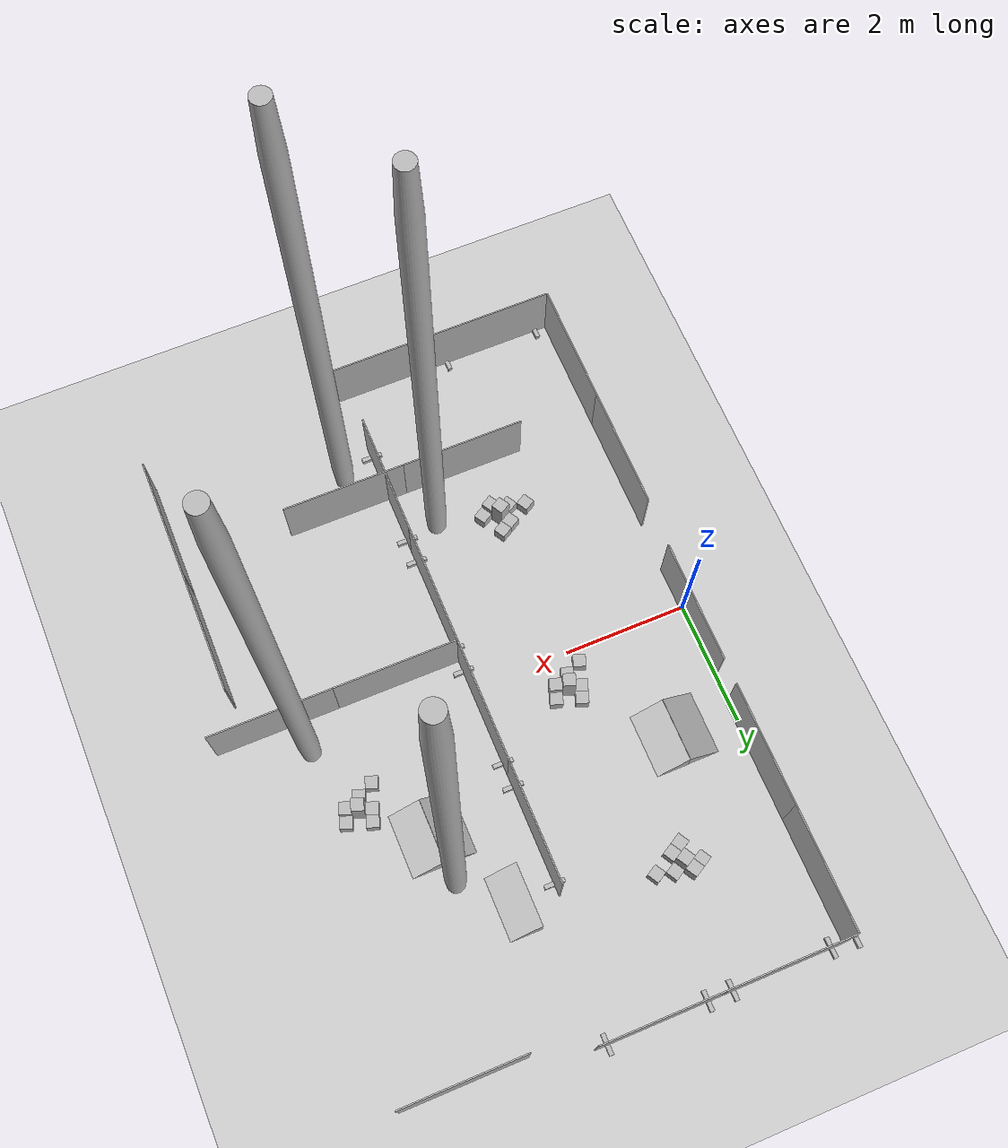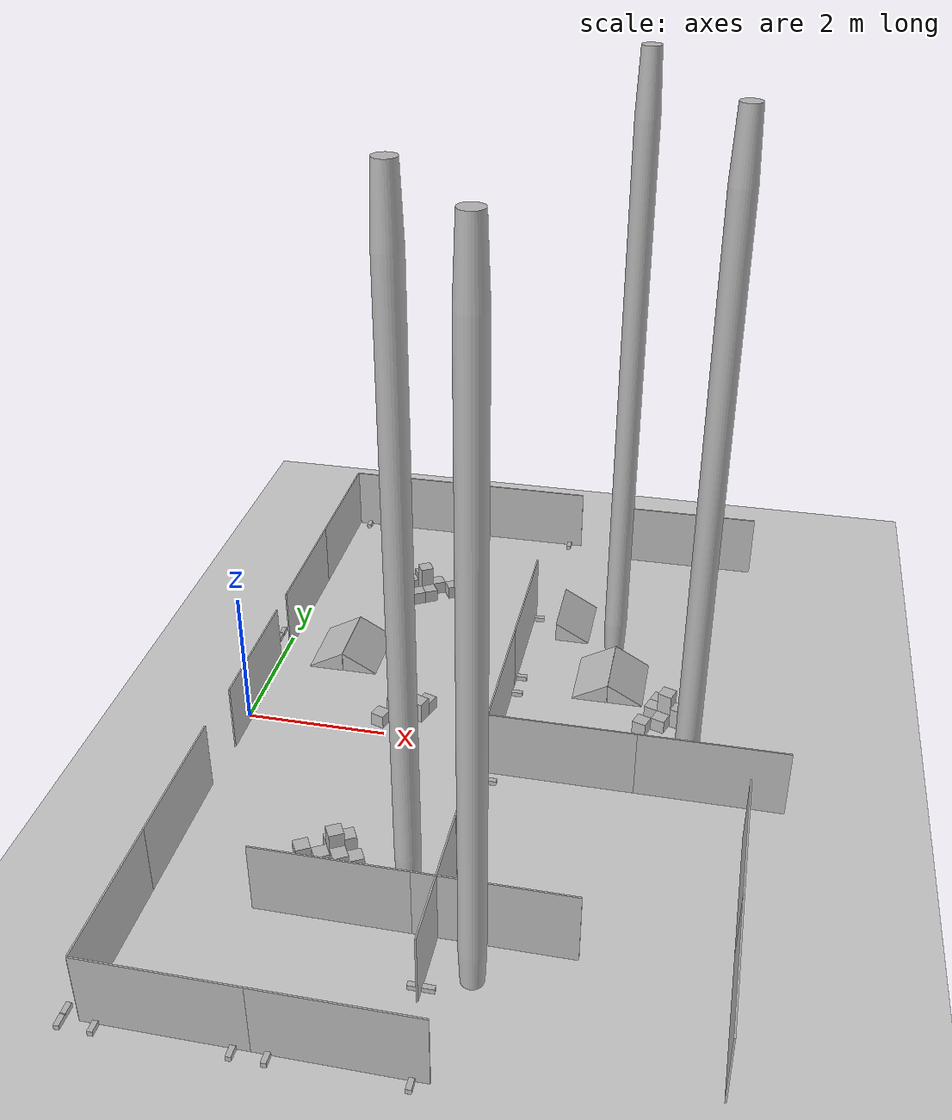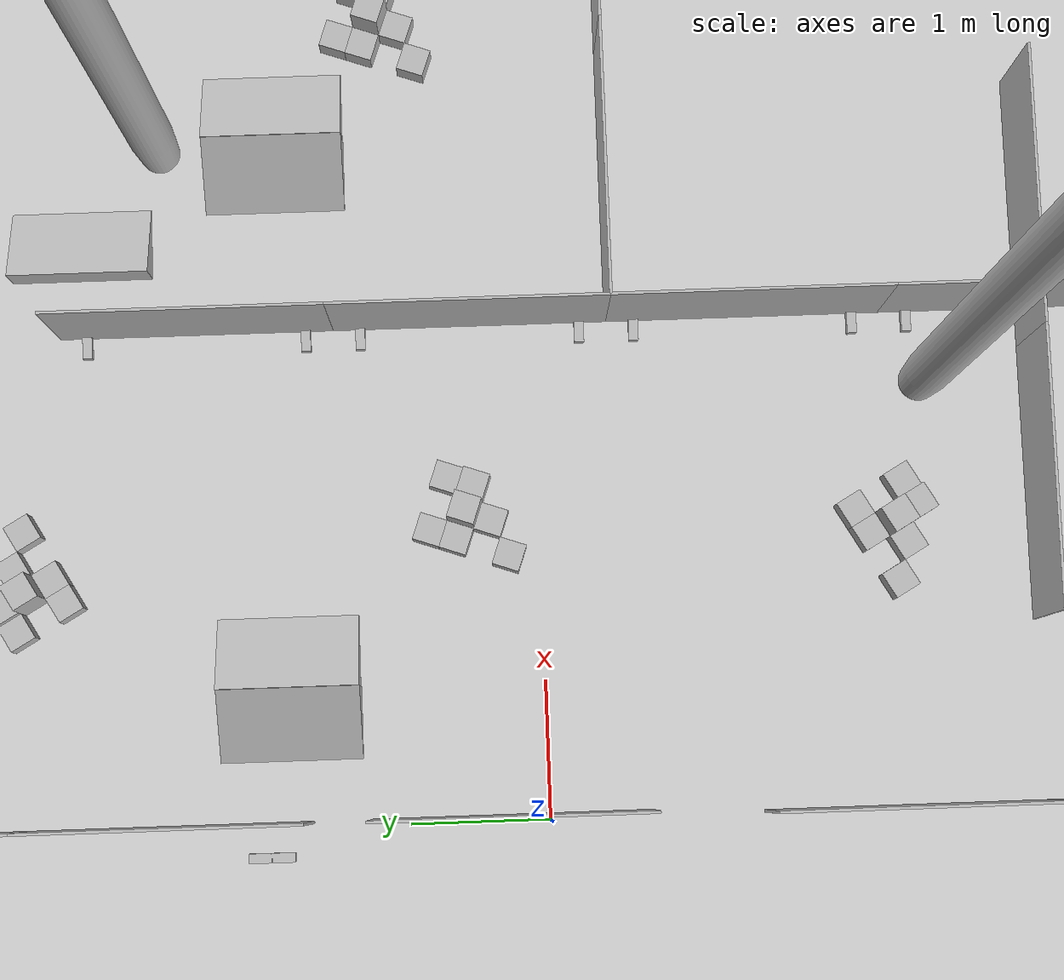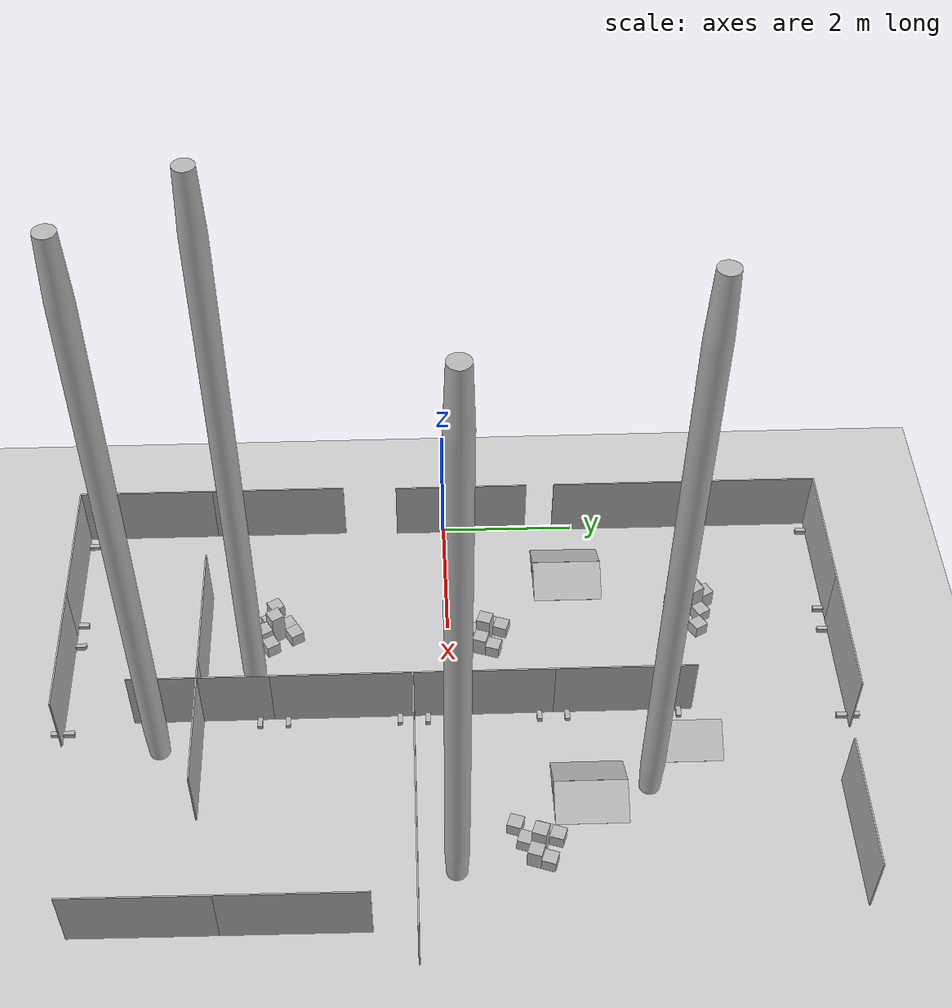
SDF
<sdf version="1.4">
 <world name="arena_HKT_5">
  <include><uri>model://ground_plane</uri></include>
  <include>
   <name>ramp.025</name>
   <pose>1.2565653324127197 1.8507144451141357 0.15000000596046448  0.0 0.0 0.0</pose>
   <uri>model://ramp</uri>
  </include>
  <include>
   <name>ramp.029</name>
   <pose>0.7436184883117676 1.8457143306732178 0.15000000596046448  0.0 -0.0 3.141592502593994</pose>
   <uri>model://ramp</uri>
  </include>
  <include>
   <name>wall_2x1.051</name>
   <pose>3.6216487884521484 2.4691503047943115 0.5130000114440918  0.0 -0.0 1.5700664520263672</pose>
   <uri>model://wall_2x1</uri>
  </include>
  <include>
   <name>wall_2x1.052</name>
   <pose>6.619458198547363 -0.5330387353897095 0.5130000114440918  0.0 -0.0 -0.0007300376892089844</pose>
   <uri>model://wall_2x1</uri>
  </include>
  <include>
   <name>wall_2x1.053</name>
   <pose>3.6201891899108887 0.4691507816314697 0.5130000114440918  0.0 -0.0 1.5700664520263672</pose>
   <uri>model://wall_2x1</uri>
  </include>
  <include>
   <name>wall_2x1.054</name>
   <pose>3.617269515991211 -3.5308477878570557 0.5130000114440918  0.0 -0.0 1.5700664520263672</pose>
   <uri>model://wall_2x1</uri>
  </include>
  <include>
   <name>wall_2x1.055</name>
   <pose>3.6187291145324707 -1.530848503112793 0.5130000114440918  0.0 -0.0 1.5700664520263672</pose>
   <uri>model://wall_2x1</uri>
  </include>
  <include>
   <name>wall_2x1.056</name>
   <pose>4.61945915222168 -0.5315788388252258 0.5130000114440918  0.0 -0.0 -0.0007300376892089844</pose>
   <uri>model://wall_2x1</uri>
  </include>
  <include>
   <name>wall_stand.674</name>
   <pose>3.6222333908081055 3.2696499824523926 0.03450000286102295  0.0 -0.0 -0.0007300376892089844</pose>
   <uri>model://wall_stand</uri>
  </include>
  <include>
   <name>wall_stand.675</name>
   <pose>3.6210646629333496 1.6686508655548096 0.03450000286102295  0.0 -0.0 -0.0007300376892089844</pose>
   <uri>model://wall_stand</uri>
  </include>
  <include>
   <name>wall_stand.676</name>
   <pose>3.6207733154296875 1.269650936126709 0.03450000286102295  0.0 -0.0 -0.0007300376892089844</pose>
   <uri>model://wall_stand</uri>
  </include>
  <include>
   <name>wall_stand.677</name>
   <pose>3.61960506439209 -0.3313487768173218 0.03450000286102295  0.0 -0.0 -0.0007300376892089844</pose>
   <uri>model://wall_stand</uri>
  </include>
  <include>
   <name>wall_stand.678</name>
   <pose>3.616685390472412 -4.331347465515137 0.03450000286102295  0.0 -0.0 -0.0007300376892089844</pose>
   <uri>model://wall_stand</uri>
  </include>
  <include>
   <name>wall_stand.679</name>
   <pose>3.6178536415100098 -2.730348825454712 0.03450000286102295  0.0 -0.0 -0.0007300376892089844</pose>
   <uri>model://wall_stand</uri>
  </include>
  <include>
   <name>wall_stand.680</name>
   <pose>3.6193137168884277 -0.7303485870361328 0.03450000286102295  0.0 -0.0 -0.0007300376892089844</pose>
   <uri>model://wall_stand</uri>
  </include>
  <include>
   <name>wall_stand.681</name>
   <pose>3.618144989013672 -2.331348419189453 0.03450000286102295  0.0 -0.0 -0.0007300376892089844</pose>
   <uri>model://wall_stand</uri>
  </include>
  <include>
   <name>wall_2x1.058</name>
   <pose>0.010646045207977295 -2.5302858352661133 0.5130000114440918  0.0 -0.0 1.570796251296997</pose>
   <uri>model://wall_2x1</uri>
  </include>
  <include>
   <name>wall_2x1.060</name>
   <pose>3.010645627975464 -5.530285835266113 0.5130000114440918  0.0 -0.0 3.141592502593994</pose>
   <uri>model://wall_2x1</uri>
  </include>
  <include>
   <name>wall_2x1.300</name>
   <pose>1.010645866394043 -5.530285835266113 0.5130000114440918  0.0 -0.0 3.141592502593994</pose>
   <uri>model://wall_2x1</uri>
  </include>
  <include>
   <name>wall_2x1.301</name>
   <pose>0.010645806789398193 -4.530285835266113 0.5130000114440918  0.0 -0.0 1.570796251296997</pose>
   <uri>model://wall_2x1</uri>
  </include>
  <include>
   <name>wall_stand.688</name>
   <pose>-0.18885427713394165 -5.530285835266113 0.03450000286102295  0.0 -0.0 1.570796251296997</pose>
   <uri>model://wall_stand</uri>
  </include>
  <include>
   <name>wall_stand.689</name>
   <pose>3.811145544052124 -5.530285835266113 0.03450000286102295  0.0 -0.0 1.570796251296997</pose>
   <uri>model://wall_stand</uri>
  </include>
  <include>
   <name>wall_stand.690</name>
   <pose>2.210145950317383 -5.530285835266113 0.03450000286102295  0.0 -0.0 1.570796251296997</pose>
   <uri>model://wall_stand</uri>
  </include>
  <include>
   <name>wall_stand.691</name>
   <pose>0.21014565229415894 -5.530285835266113 0.03450000286102295  0.0 -0.0 1.570796251296997</pose>
   <uri>model://wall_stand</uri>
  </include>
  <include>
   <name>wall_stand.692</name>
   <pose>1.8111457824707031 -5.530285835266113 0.03450000286102295  0.0 -0.0 1.570796251296997</pose>
   <uri>model://wall_stand</uri>
  </include>
  <include>
   <name>cube_20x20.785</name>
   <pose>2.0343916416168213 0.613365888595581 0.10000000149011612  0.0 0.0 4.376082897186279</pose>
   <uri>model://cube_20x20</uri>
  </include>
  <include>
   <name>cube_20x20.786</name>
   <pose>2.1571874618530273 0.358569860458374 0.10000000149011612  0.0 0.0 4.376082897186279</pose>
   <uri>model://cube_20x20</uri>
  </include>
  <include>
   <name>cube_20x20.787</name>
   <pose>1.902390956878662 0.23577475547790527 0.10000000149011612  0.0 0.0 4.376082897186279</pose>
   <uri>model://cube_20x20</uri>
  </include>
  <include>
   <name>cube_20x20.788</name>
   <pose>2.1003925800323486 0.8021619319915771 0.10000000149011612  0.0 0.0 4.376082897186279</pose>
   <uri>model://cube_20x20</uri>
  </include>
  <include>
   <name>cube_20x20.789</name>
   <pose>2.4779841899871826 0.6701610088348389 0.10000000149011612  0.0 0.0 4.376082897186279</pose>
   <uri>model://cube_20x20</uri>
  </include>
  <include>
   <name>cube_20x20.790</name>
   <pose>2.0343916416168213 0.613365888595581 0.10000000149011612  0.0 0.0 4.376082897186279</pose>
   <uri>model://cube_20x20</uri>
  </include>
  <include>
   <name>cube_20x20.791</name>
   <pose>2.1571874618530273 0.358569860458374 0.10000000149011612  0.0 0.0 4.376082897186279</pose>
   <uri>model://cube_20x20</uri>
  </include>
  <include>
   <name>cube_20x20.792</name>
   <pose>1.902390956878662 0.23577475547790527 0.10000000149011612  0.0 0.0 4.376082897186279</pose>
   <uri>model://cube_20x20</uri>
  </include>
  <include>
   <name>cube_20x20.793</name>
   <pose>2.1003925800323486 0.8021619319915771 0.10000000149011612  0.0 0.0 4.376082897186279</pose>
   <uri>model://cube_20x20</uri>
  </include>
  <include>
   <name>cube_20x20.794</name>
   <pose>2.4779841899871826 0.6701610088348389 0.10000000149011612  0.0 0.0 4.376082897186279</pose>
   <uri>model://cube_20x20</uri>
  </include>
  <include>
   <name>cube_20x30.046</name>
   <pose>2.4119834899902344 0.4813649654388428 0.15000000596046448  0.0 0.0 4.376082897186279</pose>
   <uri>model://cube_20x30</uri>
  </include>
  <include>
   <name>cube_20x30.047</name>
   <pose>2.4119834899902344 0.4813649654388428 0.15000000596046448  0.0 0.0 4.376082897186279</pose>
   <uri>model://cube_20x30</uri>
  </include>
  <include>
   <name>cube_20x50.044</name>
   <pose>2.2231879234313965 0.5473649501800537 0.25  0.0 0.0 4.376082897186279</pose>
   <uri>model://cube_20x50</uri>
  </include>
  <include>
   <name>cube_20x50.045</name>
   <pose>2.2231879234313965 0.5473649501800537 0.25  0.0 0.0 4.376082897186279</pose>
   <uri>model://cube_20x50</uri>
  </include>
  <include>
   <name>ramp.033</name>
   <pose>5.285320281982422 1.8795666694641113 0.15000000596046448  0.0 0.0 0.0</pose>
   <uri>model://ramp</uri>
  </include>
  <include>
   <name>ramp.035</name>
   <pose>4.772373676300049 1.8745665550231934 0.15000000596046448  0.0 -0.0 3.141592502593994</pose>
   <uri>model://ramp</uri>
  </include>
  <include>
   <name>cube_20x20.805</name>
   <pose>1.8325855731964111 3.536480188369751 0.10000000149011612  0.0 0.0 6.806769371032715</pose>
   <uri>model://cube_20x20</uri>
  </include>
  <include>
   <name>cube_20x20.806</name>
   <pose>1.905794620513916 3.8096840381622314 0.10000000149011612  0.0 0.0 6.806769371032715</pose>
   <uri>model://cube_20x20</uri>
  </include>
  <include>
   <name>cube_20x20.807</name>
   <pose>2.1789984703063965 3.7364747524261475 0.10000000149011612  0.0 0.0 6.806769371032715</pose>
   <uri>model://cube_20x20</uri>
  </include>
  <include>
   <name>cube_20x20.808</name>
   <pose>1.6593786478042603 3.4364826679229736 0.10000000149011612  0.0 0.0 6.806769371032715</pose>
   <uri>model://cube_20x20</uri>
  </include>
  <include>
   <name>cube_20x20.809</name>
   <pose>1.4593842029571533 3.782895803451538 0.10000000149011612  0.0 0.0 6.806769371032715</pose>
   <uri>model://cube_20x20</uri>
  </include>
  <include>
   <name>cube_20x20.810</name>
   <pose>1.8325855731964111 3.536480188369751 0.10000000149011612  0.0 0.0 6.806769371032715</pose>
   <uri>model://cube_20x20</uri>
  </include>
  <include>
   <name>cube_20x20.811</name>
   <pose>1.905794620513916 3.8096840381622314 0.10000000149011612  0.0 0.0 6.806769371032715</pose>
   <uri>model://cube_20x20</uri>
  </include>
  <include>
   <name>cube_20x20.812</name>
   <pose>2.1789984703063965 3.7364747524261475 0.10000000149011612  0.0 0.0 6.806769371032715</pose>
   <uri>model://cube_20x20</uri>
  </include>
  <include>
   <name>cube_20x20.813</name>
   <pose>1.6593786478042603 3.4364826679229736 0.10000000149011612  0.0 0.0 6.806769371032715</pose>
   <uri>model://cube_20x20</uri>
  </include>
  <include>
   <name>cube_20x20.814</name>
   <pose>1.4593842029571533 3.782895803451538 0.10000000149011612  0.0 0.0 6.806769371032715</pose>
   <uri>model://cube_20x20</uri>
  </include>
  <include>
   <name>cube_20x30.056</name>
   <pose>1.6325910091400146 3.8828933238983154 0.15000000596046448  0.0 0.0 6.806769371032715</pose>
   <uri>model://cube_20x30</uri>
  </include>
  <include>
   <name>cube_20x30.057</name>
   <pose>1.6325910091400146 3.8828933238983154 0.15000000596046448  0.0 0.0 6.806769371032715</pose>
   <uri>model://cube_20x30</uri>
  </include>
  <include>
   <name>cube_20x50.054</name>
   <pose>1.732588291168213 3.7096869945526123 0.25  0.0 0.0 6.806769371032715</pose>
   <uri>model://cube_20x50</uri>
  </include>
  <include>
   <name>cube_20x50.055</name>
   <pose>1.732588291168213 3.7096869945526123 0.25  0.0 0.0 6.806769371032715</pose>
   <uri>model://cube_20x50</uri>
  </include>
  <include>
   <name>wall_2x1.302</name>
   <pose>3.0413644313812256 5.695001602172852 0.5130000114440918  0.0 -0.0 6.283185005187988</pose>
   <uri>model://wall_2x1</uri>
  </include>
  <include>
   <name>wall_2x1.303</name>
   <pose>0.04136395454406738 2.695002794265747 0.5130000114440918  0.0 -0.0 4.71238899230957</pose>
   <uri>model://wall_2x1</uri>
  </include>
  <include>
   <name>wall_2x1.304</name>
   <pose>1.0413646697998047 5.695002555847168 0.5130000114440918  0.0 -0.0 6.283185005187988</pose>
   <uri>model://wall_2x1</uri>
  </include>
  <include>
   <name>wall_2x1.307</name>
   <pose>0.041364431381225586 4.695002555847168 0.5130000114440918  0.0 -0.0 4.71238899230957</pose>
   <uri>model://wall_2x1</uri>
  </include>
  <include>
   <name>wall_stand.696</name>
   <pose>3.841865062713623 5.695001602172852 0.03450000286102295  0.0 -0.0 4.71238899230957</pose>
   <uri>model://wall_stand</uri>
  </include>
  <include>
   <name>wall_stand.697</name>
   <pose>2.2408647537231445 5.695002555847168 0.03450000286102295  0.0 -0.0 4.71238899230957</pose>
   <uri>model://wall_stand</uri>
  </include>
  <include>
   <name>wall_stand.698</name>
   <pose>1.8418647050857544 5.695002555847168 0.03450000286102295  0.0 -0.0 4.71238899230957</pose>
   <uri>model://wall_stand</uri>
  </include>
  <include>
   <name>wall_stand.699</name>
   <pose>0.24086451530456543 5.695002555847168 0.03450000286102295  0.0 -0.0 4.71238899230957</pose>
   <uri>model://wall_stand</uri>
  </include>
  <include>
   <name>wall_stand.702</name>
   <pose>-0.15813517570495605 5.695002555847168 0.03450000286102295  0.0 -0.0 4.71238899230957</pose>
   <uri>model://wall_stand</uri>
  </include>
  <include>
   <name>wall_2x1.308</name>
   <pose>0.04136395454406738 0.2739219665527344 0.5130000114440918  0.0 -0.0 4.71238899230957</pose>
   <uri>model://wall_2x1</uri>
  </include>
  <include>
   <name>wall_2x1.310</name>
   <pose>4.3128767013549805 -3.5467369556427 0.5130000114440918  0.0 -0.0 6.2831854820251465</pose>
   <uri>model://wall_2x1</uri>
  </include>
  <include>
   <name>wall_2x1.311</name>
   <pose>2.3128767013549805 -3.5467369556427 0.5130000114440918  0.0 -0.0 6.2831854820251465</pose>
   <uri>model://wall_2x1</uri>
  </include>
  <include>
   <name>wall_stand.711</name>
   <pose>-0.19949999451637268 2.0 0.03449999913573265  0.0 -0.0 1.570796251296997</pose>
   <uri>model://wall_stand</uri>
  </include>
  <include>
   <name>wall_2x1.312</name>
   <pose>5.946268081665039 5.418047904968262 0.5130000114440918  0.0 -0.0 9.42477798461914</pose>
   <uri>model://wall_2x1</uri>
  </include>
  <include>
   <name>wall_stand.713</name>
   <pose>-0.19949999451637268 2.0 0.03449999913573265  0.0 -0.0 1.570796251296997</pose>
   <uri>model://wall_stand</uri>
  </include>
  <include>
   <name>wall_stand.715</name>
   <pose>-0.19949999451637268 2.0 0.03449999913573265  0.0 -0.0 1.570796251296997</pose>
   <uri>model://wall_stand</uri>
  </include>
  <include>
   <name>wall_stand.717</name>
   <pose>-0.19949999451637268 2.0 0.03449999913573265  0.0 -0.0 1.570796251296997</pose>
   <uri>model://wall_stand</uri>
  </include>
  <include>
   <name>cube_20x20.815</name>
   <pose>1.9727907180786133 -2.3717634677886963 0.10000000149011612  0.0 -0.0 3.6651763916015625</pose>
   <uri>model://cube_20x20</uri>
  </include>
  <include>
   <name>cube_20x20.816</name>
   <pose>1.8995816707611084 -2.6449673175811768 0.10000000149011612  0.0 -0.0 3.6651763916015625</pose>
   <uri>model://cube_20x20</uri>
  </include>
  <include>
   <name>cube_20x20.817</name>
   <pose>1.626377820968628 -2.5717580318450928 0.10000000149011612  0.0 -0.0 3.6651763916015625</pose>
   <uri>model://cube_20x20</uri>
  </include>
  <include>
   <name>cube_20x20.818</name>
   <pose>2.1459975242614746 -2.271765947341919 0.10000000149011612  0.0 -0.0 3.6651763916015625</pose>
   <uri>model://cube_20x20</uri>
  </include>
  <include>
   <name>cube_20x20.819</name>
   <pose>2.345992088317871 -2.6181790828704834 0.10000000149011612  0.0 -0.0 3.6651763916015625</pose>
   <uri>model://cube_20x20</uri>
  </include>
  <include>
   <name>cube_20x20.820</name>
   <pose>1.9727907180786133 -2.3717634677886963 0.10000000149011612  0.0 -0.0 3.6651763916015625</pose>
   <uri>model://cube_20x20</uri>
  </include>
  <include>
   <name>cube_20x20.821</name>
   <pose>1.8995816707611084 -2.6449673175811768 0.10000000149011612  0.0 -0.0 3.6651763916015625</pose>
   <uri>model://cube_20x20</uri>
  </include>
  <include>
   <name>cube_20x20.822</name>
   <pose>1.626377820968628 -2.5717580318450928 0.10000000149011612  0.0 -0.0 3.6651763916015625</pose>
   <uri>model://cube_20x20</uri>
  </include>
  <include>
   <name>cube_20x20.823</name>
   <pose>2.1459975242614746 -2.271765947341919 0.10000000149011612  0.0 -0.0 3.6651763916015625</pose>
   <uri>model://cube_20x20</uri>
  </include>
  <include>
   <name>cube_20x20.824</name>
   <pose>2.345992088317871 -2.6181790828704834 0.10000000149011612  0.0 -0.0 3.6651763916015625</pose>
   <uri>model://cube_20x20</uri>
  </include>
  <include>
   <name>cube_20x20.825</name>
   <pose>5.720278739929199 1.1936125755310059 0.10000000149011612  0.0 0.0 4.376082897186279</pose>
   <uri>model://cube_20x20</uri>
  </include>
  <include>
   <name>cube_20x20.826</name>
   <pose>5.843074798583984 0.9388165473937988 0.10000000149011612  0.0 0.0 4.376082897186279</pose>
   <uri>model://cube_20x20</uri>
  </include>
  <include>
   <name>cube_20x20.827</name>
   <pose>5.588278293609619 0.8160209655761719 0.10000000149011612  0.0 0.0 4.376082897186279</pose>
   <uri>model://cube_20x20</uri>
  </include>
  <include>
   <name>cube_20x20.828</name>
   <pose>5.786279678344727 1.382408857345581 0.10000000149011612  0.0 0.0 4.376082897186279</pose>
   <uri>model://cube_20x20</uri>
  </include>
  <include>
   <name>cube_20x20.829</name>
   <pose>6.163871765136719 1.2504076957702637 0.10000000149011612  0.0 0.0 4.376082897186279</pose>
   <uri>model://cube_20x20</uri>
  </include>
  <include>
   <name>cube_20x20.830</name>
   <pose>5.720278739929199 1.1936125755310059 0.10000000149011612  0.0 0.0 4.376082897186279</pose>
   <uri>model://cube_20x20</uri>
  </include>
  <include>
   <name>cube_20x20.831</name>
   <pose>5.843074798583984 0.9388165473937988 0.10000000149011612  0.0 0.0 4.376082897186279</pose>
   <uri>model://cube_20x20</uri>
  </include>
  <include>
   <name>cube_20x20.832</name>
   <pose>5.588278293609619 0.8160209655761719 0.10000000149011612  0.0 0.0 4.376082897186279</pose>
   <uri>model://cube_20x20</uri>
  </include>
  <include>
   <name>cube_20x20.833</name>
   <pose>5.786279678344727 1.382408857345581 0.10000000149011612  0.0 0.0 4.376082897186279</pose>
   <uri>model://cube_20x20</uri>
  </include>
  <include>
   <name>cube_20x20.834</name>
   <pose>6.163871765136719 1.2504076957702637 0.10000000149011612  0.0 0.0 4.376082897186279</pose>
   <uri>model://cube_20x20</uri>
  </include>
  <include>
   <name>cube_20x30.058</name>
   <pose>2.1727852821350098 -2.7181766033172607 0.15000000596046448  0.0 -0.0 3.6651763916015625</pose>
   <uri>model://cube_20x30</uri>
  </include>
  <include>
   <name>cube_20x30.059</name>
   <pose>2.1727852821350098 -2.7181766033172607 0.15000000596046448  0.0 -0.0 3.6651763916015625</pose>
   <uri>model://cube_20x30</uri>
  </include>
  <include>
   <name>cube_20x30.133</name>
   <pose>6.097870826721191 1.0616111755371094 0.15000000596046448  0.0 0.0 4.376082897186279</pose>
   <uri>model://cube_20x30</uri>
  </include>
  <include>
   <name>cube_20x30.134</name>
   <pose>6.097870826721191 1.0616111755371094 0.15000000596046448  0.0 0.0 4.376082897186279</pose>
   <uri>model://cube_20x30</uri>
  </include>
  <include>
   <name>cube_20x50.056</name>
   <pose>2.0727880001068115 -2.5449702739715576 0.25  0.0 -0.0 3.6651763916015625</pose>
   <uri>model://cube_20x50</uri>
  </include>
  <include>
   <name>cube_20x50.057</name>
   <pose>2.0727880001068115 -2.5449702739715576 0.25  0.0 -0.0 3.6651763916015625</pose>
   <uri>model://cube_20x50</uri>
  </include>
  <include>
   <name>cube_20x50.127</name>
   <pose>5.9090752601623535 1.1276118755340576 0.25  0.0 0.0 4.376082897186279</pose>
   <uri>model://cube_20x50</uri>
  </include>
  <include>
   <name>cube_20x50.128</name>
   <pose>5.9090752601623535 1.1276118755340576 0.25  0.0 0.0 4.376082897186279</pose>
   <uri>model://cube_20x50</uri>
  </include>
  <include>
   <name>ramp.040</name>
   <pose>4.30116605758667 3.3036534786224365 0.15000000596046448  0.0 -0.0 6.283185005187988</pose>
   <uri>model://ramp</uri>
  </include>
  <include>
   <name>barrel_110l.021</name>
   <pose>3.0823071002960205 -2.7958340644836426 0.0  0.0 0.0 0.0</pose>
   <uri>model://barrel_110l</uri>
  </include>
  <include>
   <name>barrel_110l.027</name>
   <pose>4.976329326629639 2.711411952972412 0.0  0.0 0.0 0.0</pose>
   <uri>model://barrel_110l</uri>
  </include>
  <include>
   <name>barrel_110l.028</name>
   <pose>4.166475772857666 -4.119521617889404 0.0  0.0 0.0 0.0</pose>
   <uri>model://barrel_110l</uri>
  </include>
  <include>
   <name>barrel_110l.029</name>
   <pose>6.263016223907471 -0.004051387310028076 0.0  0.0 0.0 0.0</pose>
   <uri>model://barrel_110l</uri>
  </include>
  <include>
   <name>wall_2x1.315</name>
   <pose>7.101434230804443 -2.127796173095703 0.5130000114440918  0.0 0.0 7.846388816833496</pose>
   <uri>model://wall_2x1</uri>
  </include>
  <include>
   <name>wall_stand.719</name>
   <pose>-0.19949999451637268 2.0 0.03449999913573265  0.0 -0.0 1.570796251296997</pose>
   <uri>model://wall_stand</uri>
  </include>
  <include>
   <name>wall_2x1.316</name>
   <pose>7.086248874664307 -4.127738952636719 0.5130000114440918  0.0 0.0 7.846388816833496</pose>
   <uri>model://wall_2x1</uri>
  </include>
  <include>
   <name>wall_stand.721</name>
   <pose>-0.19949999451637268 2.0 0.03449999913573265  0.0 -0.0 1.570796251296997</pose>
   <uri>model://wall_stand</uri>
  </include>
 </world>
</sdf>
